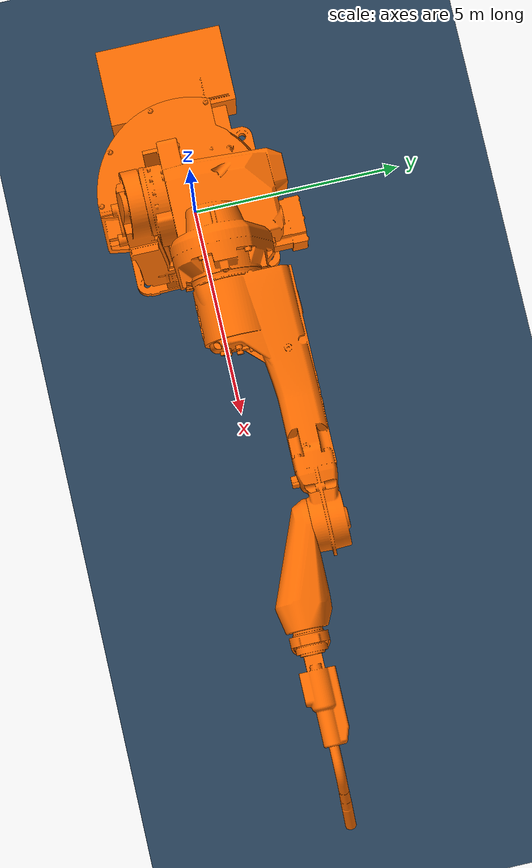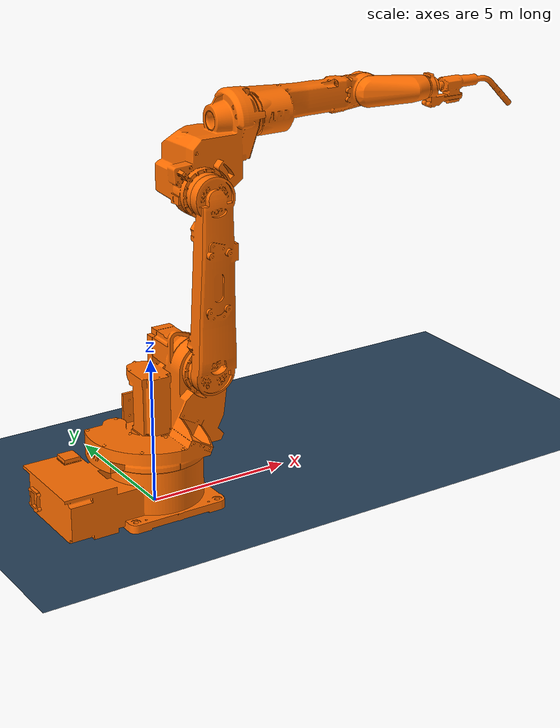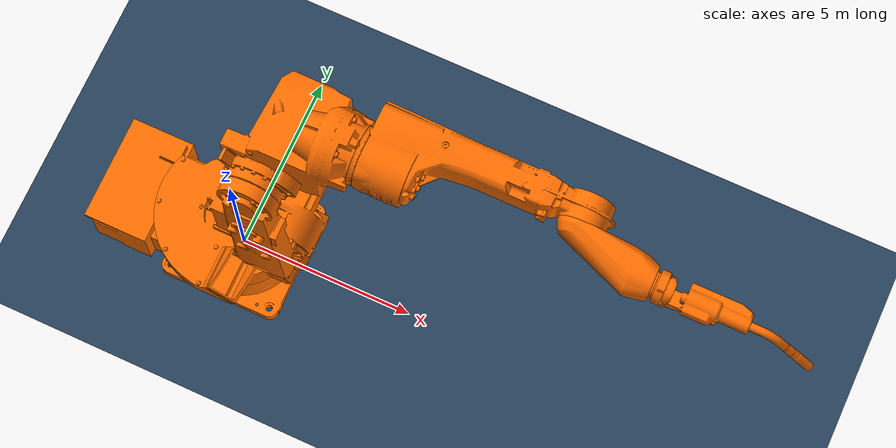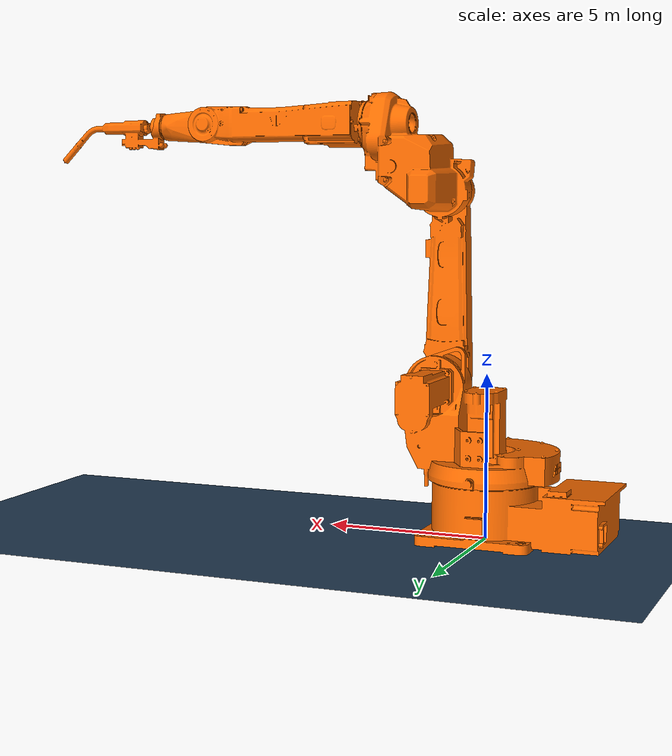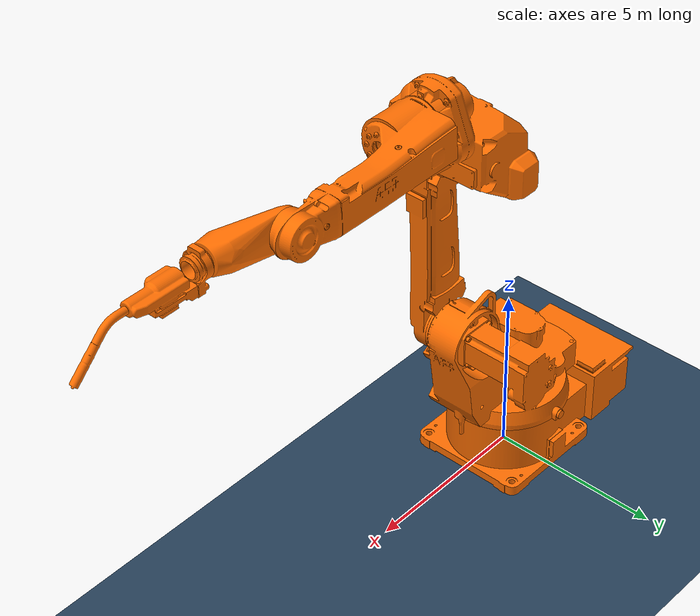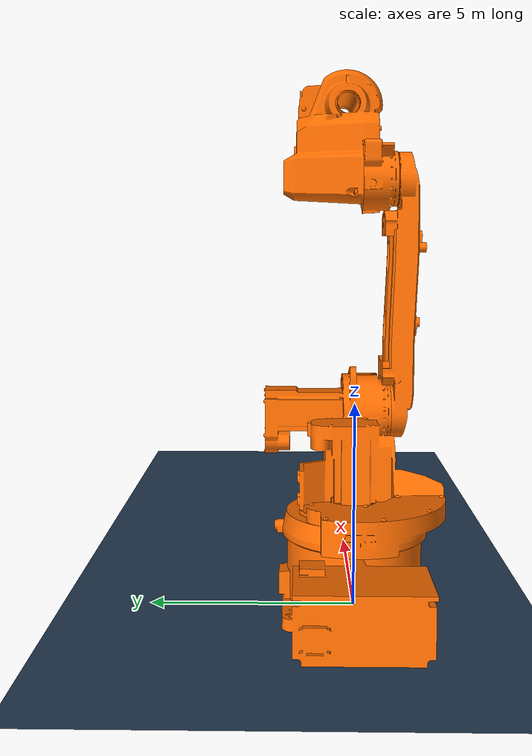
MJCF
<mujoco model="ABB IRB 1520 scene">

  <include file="./robots/IRB1520ID.xml" />

  <statistic center="0.1 0 1" extent="1.5" />

  <visual>
    <headlight diffuse="0.6 0.6 0.6" ambient="0.3 0.3 0.3" specular="0 0 0" />
    <rgba haze="0.15 0.25 0.35 1" />
    <global azimuth="45" elevation="-20" />"
  </visual>

  <asset>
    <texture type="skybox" builtin="gradient" rgb1="0.3 0.5 0.7" rgb2="0 0 0" width="512" height="3072" />
    <texture type="2d" name="groundplane" builtin="checker" mark="edge" rgb1="0.2 0.3 0.4" rgb2="0.1 0.2 0.3" markrgb="0.8 0.8 0.8" width="300" height="300" />
    <material name="groundplane" texture="groundplane" texuniform="true" texrepeat="5 5" reflectance="0.2" />
  <mesh name="welding_mesh" file="assets\Corner_Joint_fe2890e3.obj" scale="0.002 0.002 0.002" /><texture name="marker_texture" type="2d" file="assets\workbench.png" width="512" height="731" /><material name="marker_material" texture="marker_texture" texrepeat="1 1" /></asset>

  <worldbody>
    <camera pos="-10.817 -22.425 18.664" xyaxes="0.854 -0.520 0.000 0.214 0.352 0.911" />
    <light pos="0 0 1.5" dir="0 0 -1" directional="true" />
    <geom name="floor" size="0 0 0.05" type="plane" material="groundplane" />

  <body name="marker_plane" pos="0.3 0 0.001"><geom type="plane" size="0.1240 0.1767 0.001" material="marker_material" /></body><body name="welding_object" pos="0.3 0 0.061"><geom type="mesh" mesh="welding_mesh" rgba="0.8 0.8 0.8 1" /></body></worldbody>

</mujoco>

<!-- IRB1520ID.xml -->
<mujoco model="abb_irb1520id">
  <compiler angle="radian" autolimits="true"/>

  <option integrator="implicitfast"/>

  <default>
    <default class="abb">
      <joint type="hinge" frictionloss="0.5" armature="0.2" limited="true"/>
      <general gaintype="fixed" biastype="affine" gainprm="500" biasprm="0 -500 -50" forcerange="-150 150"/>
      <default class="visual">
        <geom type="mesh" contype="0" conaffinity="0" group="2"/>
      </default>
      <default class="collision">
        <geom type="mesh" group="3" mass="0"/>
      </default>
    </default>
  </default>

  <asset>
    <material name="abb_orange" rgba="1 0.43 0 1" specular="0.5" shininess="0.25"/>

    <mesh name="base" file="./meshes/irb1520id/stl/visual/base.stl" scale="0.01 0.01 0.01"/>
    <mesh name="base_col" file="./meshes/irb1520id/stl/collision/base.stl" scale="0.01 0.01 0.01"/>
    <mesh name="link1" file="./meshes/irb1520id/stl/visual/link1.stl" scale="0.01 0.01 0.01"/>
    <mesh name="link1_col" file="./meshes/irb1520id/stl/collision/link1.stl" scale="0.01 0.01 0.01"/>
    <mesh name="link2" file="./meshes/irb1520id/stl/visual/link2.stl" scale="0.01 0.01 0.01"/>
    <mesh name="link2_col" file="./meshes/irb1520id/stl/collision/link2.stl" scale="0.01 0.01 0.01"/>
    <mesh name="link3" file="./meshes/irb1520id/stl/visual/link3.stl" scale="0.01 0.01 0.01"/>
    <mesh name="link3_col" file="./meshes/irb1520id/stl/collision/link3.stl" scale="0.01 0.01 0.01"/>
    <mesh name="link4" file="./meshes/irb1520id/stl/visual/link4.stl" scale="0.01 0.01 0.01"/>
    <mesh name="link4_col" file="./meshes/irb1520id/stl/collision/link4.stl" scale="0.01 0.01 0.01"/>
    <mesh name="link5" file="./meshes/irb1520id/stl/visual/link5.stl" scale="0.01 0.01 0.01"/>
    <mesh name="link5_col" file="./meshes/irb1520id/stl/collision/link5.stl" scale="0.01 0.01 0.01"/>
    <mesh name="link6" file="./meshes/irb1520id/stl/visual/link6.stl" scale="0.01 0.01 0.01"/>
    <mesh name="link6_col" file="./meshes/irb1520id/stl/collision/link6.stl" scale="0.01 0.01 0.01"/>
    <mesh name="torch" file="./meshes/irb1520id/stl/visual/torch.stl" scale="0.01 0.01 0.01"/>
    <mesh name="torch_col" file="./meshes/irb1520id/stl/collision/torch.stl" scale="0.01 0.01 0.01"/>
  </asset>

  <worldbody>
    <camera name="tracker" pos="-10.817 -22.425 18.664" xyaxes="0.854 -0.520 0.000 0.214 0.352 0.911"/>
    <light name="spotlight" mode="targetbodycom" target="link_6" pos="0 -1 2"/>

    <body name="base_link" childclass="abb">
      <inertial pos="-0.122799 0.000948 -0.092564" mass="16.85" diaginertia="0.1790 0.4590 0.5590"/>
      <geom name="base_vis" material="abb_orange" mesh="base" pos="0 0 1.7993" class="visual" rgba="0.5 0.5 0.5 1"/>
      <geom name="base_col" mesh="base_col" pos="0 0 1.7993" class="collision"/>

      <body name="link_1" pos="0 0 0">
        <inertial pos="0.057107 0.188932 -0.000607" mass="14.04" diaginertia="0.2485 0.2724 0.3329"/>
        <joint name="joint_1" axis="0 0 -1" pos="0 0 1.2693" range="-2.9670 2.9670"/>
        <geom name="link1_vis" material="abb_orange" mesh="link1" pos="0 0 1.2693" quat="0.707107 0.707107 0 0" class="visual" rgba="0.5 0.5 0.5 1"/>
        <geom name="link1_col" mesh="link1_col" pos="0 0 1.2693" quat="0.707107 0.707107 0 0" class="collision"/>

        <body name="link_2" pos="1.6 -0.9 4.5693">
          <inertial pos="0.000705 0.290047 0.035494" mass="4.1091" diaginertia="0.1373 0.007032 0.1407"/>
          <joint name="joint_2" axis="0 1 0" range="-1.5708 2.6180"/>
          <geom name="link2_vis" material="abb_orange" mesh="link2" quat="0.707107 0.707107 0 0" class="visual" rgba="0.5 0.5 0.5 1"/>
          <geom name="link2_col" mesh="link2_col" quat="0.707107 0.707107 0 0" class="collision"/>

          <body name="link_3" pos="0 -0.23 5.9255">
            <inertial pos="0.06548 0.078265 -0.134469" mass="0.07683" diaginertia="0.009718 0.008392 0.01046"/>
            <joint name="joint_3" axis="0 1 0" range="-1.7453 1.3963"/>
            <geom name="link3_vis" material="abb_orange" mesh="link3" quat="0.707107 0.707107 0 0" class="visual" rgba="0.5 0.5 0.5 1"/>
            <geom name="link3_col" mesh="link3_col" quat="0.707107 0.707107 0 0" class="collision"/>

            <body name="link_4" pos="2.17 1.21677 2" quat="0.707107 0.707107 0 0">
              <inertial pos="-0.057844 0.001716 -0.257144" mass="0.01018" diaginertia="0.008611 0.008908 0.008138"/>
              <joint name="joint_4" axis="1 0 0" range="-2.7053 2.7053"/>
              <geom name="link4_vis" material="abb_orange" mesh="link4" quat="0.707107 0 -0.707107 0" class="visual" rgba="0.5 0.5 0.5 1"/>
              <geom name="link4_col" mesh="link4_col" quat="0.707107 0 -0.707107 0" class="collision"/>

              <body name="link_5" pos="5.0637 0 -0.51885">
                <inertial pos="0.079912 0.000066 0.025079" mass="0.004108" diaginertia="0.00005014 0.0002404 0.0002399"/>
                <joint name="joint_5" axis="0 0 1" range="-2.3562 2.3562"/>
                <geom name="link5_vis" material="abb_orange" mesh="link5" class="visual" rgba="0.5 0.5 0.5 1"/>
                <geom name="link5_col" mesh="link5_col" class="collision"/>

                <body name="link_6" pos="1.9 0 0.525" euler="3.1416 3.1416 0">
                  <inertial pos="0.000015 -0.000103 -0.013642" mass="0.000710" diaginertia="0.000005086 0.000005109 0.000005635"/>
                  <joint name="joint_6" axis="1 0 0" range="-3.4907 3.4907"/>
                  <geom name="link6_vis" material="abb_orange" mesh="link6" quat="0.707107 0 0.707107 0" class="visual" rgba="0.5 0.5 0.5 1"/>
                  <geom name="link6_col" mesh="link6_col" quat="0.707107 0 0.707107 0" class="collision"/>

                  <body name="tool0" quat="0 0 1 0">
                    <inertial pos="-0.001299 0.017065 0.125009" mass="0.0004342998" diaginertia="0.0003008 0.0002789 0.00004155"/>
                    <geom name="torch_vis" material="abb_orange" mesh="torch" pos="0.1 0 0" quat="0.707107 0 0.707107 0" class="visual" rgba="0.5 0.5 0.5 1"/>
                    <geom name="torch_col" mesh="torch_col" pos="0.1 0 0" quat="0.707107 0 0.707107 0" class="collision" />
                    <site name="attachment_site" pos="3.85893 1.09393 0" quat="0.924 0 -0.383 0"  rgba="1 0 0 1" size="0.01"/>
                  </body>
                </body>
              </body>
            </body>
          </body>
        </body>
      </body>
    </body>
  </worldbody>

  <contact>
    <!-- Exclude adjacent links from colliding -->
    <exclude body1="base_link" body2="link_1"/>
    <exclude body1="link_1" body2="link_2"/>
    <exclude body1="link_2" body2="link_3"/>
    <exclude body1="link_3" body2="link_4"/>
    <exclude body1="link_4" body2="link_5"/>
    <exclude body1="link_5" body2="link_6"/>
    <exclude body1="link_6" body2="tool0"/>
    <!-- Additional exclusions for non-adjacent links that might come close -->
    <exclude body1="base_link" body2="link_2"/>
    <exclude body1="link_1" body2="link_3"/>
    <exclude body1="link_2" body2="link_4"/>
    <exclude body1="link_3" body2="link_5"/>
    <exclude body1="link_4" body2="link_6"/>
    <exclude body1="link_5" body2="tool0"/>
  </contact>

  <actuator>
    <position name="joint1_pos" joint="joint_1" ctrlrange="-2.9670 2.9670" kp="500" kv="200"/>
    <position name="joint2_pos" joint="joint_2" ctrlrange="-1.5708 2.6180" kp="500" kv="200"/>
    <position name="joint3_pos" joint="joint_3" ctrlrange="-1.7453 1.3963" kp="500" kv="200"/>
    <position name="joint4_pos" joint="joint_4" ctrlrange="-2.7053 2.7053" kp="500" kv="200"/>
    <position name="joint5_pos" joint="joint_5" ctrlrange="-2.3562 2.3562" kp="500" kv="200"/>
    <position name="joint6_pos" joint="joint_6" ctrlrange="-3.4907 3.4907" kp="500" kv="200"/>
  </actuator>

  <keyframe>
    <key name="home" qpos="0 0 0 0 0 0" ctrl="0 0 0 0 0 0"/>
  </keyframe>
</mujoco>
